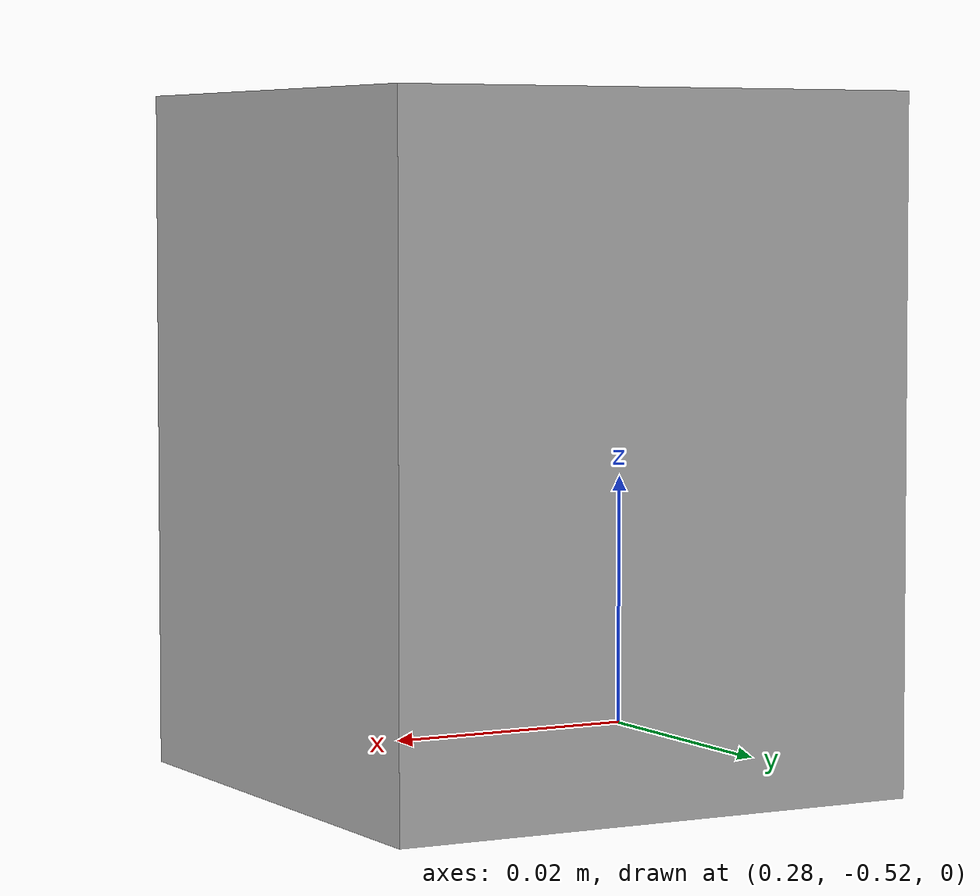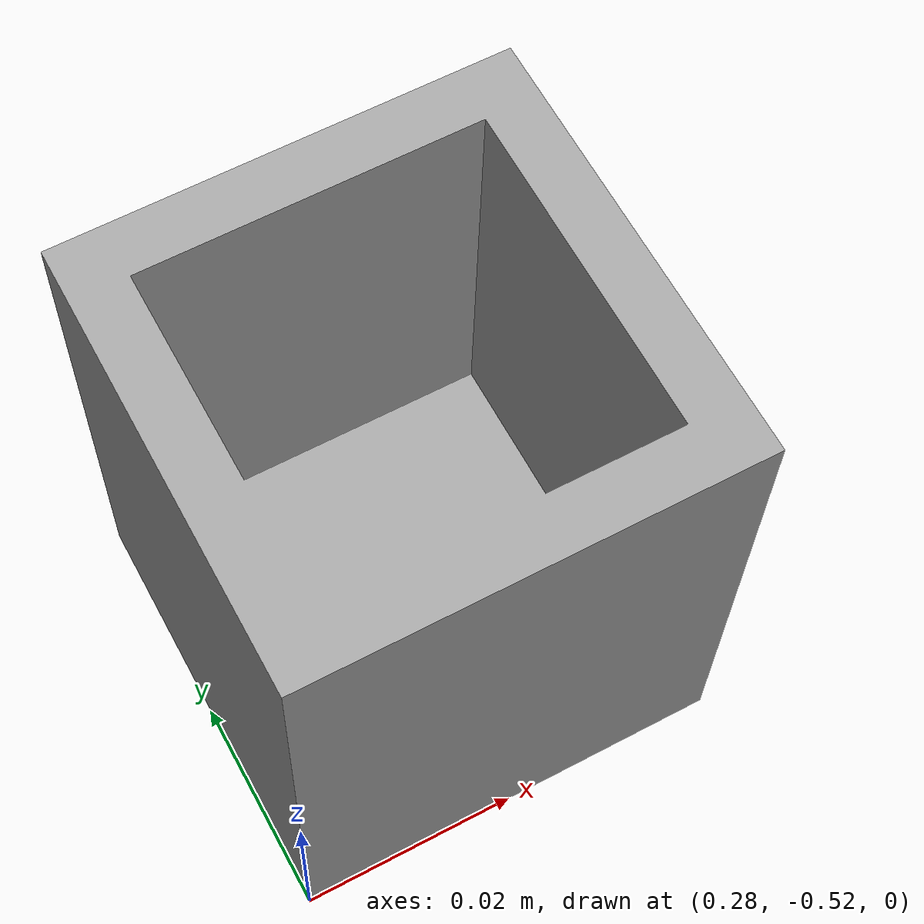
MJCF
<mujoco model="empty_box">
  <default>
    <default class="visual2">
      <geom group="2" type="mesh" contype="0" conaffinity="0"/>
    </default>
    <default class="collision2">
      <geom group="3" type="mesh"/>
    </default>
  </default>
  <asset>
    <material name="Steel_-_Satin2" specular="0.5" rgba="0.627451 0.627451 0.627451 1.0"/>
    <mesh file="/home/seongjin/Downloads/test/empty_box/empty_box.obj" scale="0.001 0.001 0.001"/>
    <mesh file="/home/seongjin/Downloads/test/empty_box/empty_box_collision_1.obj" scale="0.001 0.001 0.001"/>
    <mesh file="/home/seongjin/Downloads/test/empty_box/empty_box_collision_0.obj" scale="0.001 0.001 0.001"/>
    <mesh file="/home/seongjin/Downloads/test/empty_box/empty_box_collision_2.obj" scale="0.001 0.001 0.001"/>
    <mesh file="/home/seongjin/Downloads/test/empty_box/empty_box_collision_3.obj" scale="0.001 0.001 0.001"/>
    <mesh file="/home/seongjin/Downloads/test/empty_box/empty_box_collision_4.obj" scale="0.001 0.001 0.001"/>
    <mesh file="/home/seongjin/Downloads/test/empty_box/empty_box_collision_5.obj" scale="0.001 0.001 0.001"/>
    <mesh file="/home/seongjin/Downloads/test/empty_box/empty_box_collision_6.obj" scale="0.001 0.001 0.001"/>
    <mesh file="/home/seongjin/Downloads/test/empty_box/empty_box_collision_7.obj" scale="0.001 0.001 0.001"/>
    <mesh file="/home/seongjin/Downloads/test/empty_box/empty_box_collision_8.obj" scale="0.001 0.001 0.001"/>
    <mesh file="/home/seongjin/Downloads/test/empty_box/empty_box_collision_9.obj" scale="0.001 0.001 0.001"/>
    <mesh file="/home/seongjin/Downloads/test/empty_box/empty_box_collision_10.obj" scale="0.001 0.001 0.001"/>
    <mesh file="/home/seongjin/Downloads/test/empty_box/empty_box_collision_11.obj" scale="0.001 0.001 0.001"/>
    <mesh file="/home/seongjin/Downloads/test/empty_box/empty_box_collision_12.obj" scale="0.001 0.001 0.001"/>
    <mesh file="/home/seongjin/Downloads/test/empty_box/empty_box_collision_13.obj" scale="0.001 0.001 0.001"/>
    <mesh file="/home/seongjin/Downloads/test/empty_box/empty_box_collision_14.obj" scale="0.001 0.001 0.001"/>
    <mesh file="/home/seongjin/Downloads/test/empty_box/empty_box_collision_15.obj" scale="0.001 0.001 0.001"/>
    <mesh file="/home/seongjin/Downloads/test/empty_box/empty_box_collision_16.obj" scale="0.001 0.001 0.001"/>
    <mesh file="/home/seongjin/Downloads/test/empty_box/empty_box_collision_17.obj" scale="0.001 0.001 0.001"/>
    <mesh file="/home/seongjin/Downloads/test/empty_box/empty_box_collision_18.obj" scale="0.001 0.001 0.001"/>
    <mesh file="/home/seongjin/Downloads/test/empty_box/empty_box_collision_19.obj" scale="0.001 0.001 0.001"/>
    <mesh file="/home/seongjin/Downloads/test/empty_box/empty_box_collision_20.obj" scale="0.001 0.001 0.001"/>
    <mesh file="/home/seongjin/Downloads/test/empty_box/empty_box_collision_21.obj" scale="0.001 0.001 0.001"/>
    <mesh file="/home/seongjin/Downloads/test/empty_box/empty_box_collision_22.obj" scale="0.001 0.001 0.001"/>
  </asset>
  <worldbody>
    <body name="empty_box" pos="0.3 -0.5 0">
      <joint type="free"/>
      <geom material="Steel_-_Satin2" mesh="empty_box" class="visual2"/>
      <geom mesh="empty_box_collision_0" friction="0.7 0.7 0.7" condim="6"  solimp="0.95 0.99 0.001" solref="0.004 1" rgba="0.16548280273097937 0.6115624036152839 0.22257894084434393 1" class="collision2"/>
      <geom mesh="empty_box_collision_1" friction="0.7 0.7 0.7" condim="6"  solimp="0.95 0.99 0.001" solref="0.004 1" rgba="0.6217827467924142 0.9808848631185778 0.3591586552933258 1" class="collision2"/>
      <geom mesh="empty_box_collision_2" friction="0.7 0.7 0.7" condim="6"  solimp="0.95 0.99 0.001" solref="0.004 1" rgba="0.4448626151752604 0.5687181782635936 0.9490032907642686 1" class="collision2"/>
      <geom mesh="empty_box_collision_3" friction="0.7 0.7 0.7" condim="6"  solimp="0.95 0.99 0.001" solref="0.004 1" rgba="0.29730406725968817 0.9019272510736704 0.8656097693020329 1" class="collision2"/>
      <geom mesh="empty_box_collision_4" friction="0.7 0.7 0.7" condim="6"  solimp="0.95 0.99 0.001" solref="0.004 1" rgba="0.10539589470673782 0.06534923750454746 0.9070553062356406 1" class="collision2"/>
      <geom mesh="empty_box_collision_5" friction="0.7 0.7 0.7" condim="6"  solimp="0.95 0.99 0.001" solref="0.004 1" rgba="0.9662833075534359 0.8993090144336255 0.4391182592716395 1" class="collision2"/>
      <geom mesh="empty_box_collision_6" friction="0.7 0.7 0.7" condim="6"  solimp="0.95 0.99 0.001" solref="0.004 1" rgba="0.8733633750153083 0.7266112320961049 0.9168383478120005 1" class="collision2"/>
      <geom mesh="empty_box_collision_7" friction="0.7 0.7 0.7" condim="6"  solimp="0.95 0.99 0.001" solref="0.004 1" rgba="0.4559584669494523 0.8774912614386928 0.0061204158089090965 1" class="collision2"/>
      <geom mesh="empty_box_collision_8" friction="0.7 0.7 0.7" condim="6"  solimp="0.95 0.99 0.001" solref="0.004 1" rgba="0.2802566305263626 0.3031708466049323 0.7951078339934398 1" class="collision2"/>
      <geom mesh="empty_box_collision_9" friction="0.7 0.7 0.7" condim="6"  solimp="0.95 0.99 0.001" solref="0.004 1" rgba="0.19522734748584403 0.4947082195541552 0.7644004184958425 1" class="collision2"/>
      <geom mesh="empty_box_collision_10" friction="0.7 0.7 0.7" condim="6"  solimp="0.95 0.99 0.001" solref="0.004 1" rgba="0.6535899943022443 0.13790481997271553 0.4267139394654752 1" class="collision2"/>
      <geom mesh="empty_box_collision_11" friction="0.7 0.7 0.7" condim="6"  solimp="0.95 0.99 0.001" solref="0.004 1" rgba="0.6306866425889781 0.2369788459276071 0.545071819588209 1" class="collision2"/>
      <geom mesh="empty_box_collision_12" friction="0.7 0.7 0.7" condim="6"  solimp="0.95 0.99 0.001" solref="0.004 1" rgba="0.35816794575481736 0.13753278846352845 0.9303596142483612 1" class="collision2"/>
      <geom mesh="empty_box_collision_13" friction="0.7 0.7 0.7" condim="6"  solimp="0.95 0.99 0.001" solref="0.004 1" rgba="0.34168352438453253 0.3047627942836444 0.32009161222852955 1" class="collision2"/>
      <geom mesh="empty_box_collision_14" friction="0.7 0.7 0.7" condim="6"  solimp="0.95 0.99 0.001" solref="0.004 1" rgba="0.5256673981543794 0.6922602444637128 0.07100376487467297 1" class="collision2"/>
      <geom mesh="empty_box_collision_15" friction="0.7 0.7 0.7" condim="6"  solimp="0.95 0.99 0.001" solref="0.004 1" rgba="0.587238425767195 0.21664760745952616 0.011958713639552698 1" class="collision2"/>
      <geom mesh="empty_box_collision_16" friction="0.7 0.7 0.7" condim="6"  solimp="0.95 0.99 0.001" solref="0.004 1" rgba="0.14578563960938573 0.7557257162214773 0.4740228165449889 1" class="collision2"/>
      <geom mesh="empty_box_collision_17" friction="0.7 0.7 0.7" condim="6"  solimp="0.95 0.99 0.001" solref="0.004 1" rgba="0.40577251033693695 0.4538533604299414 0.44196582168984433 1" class="collision2"/>
      <geom mesh="empty_box_collision_18" friction="0.7 0.7 0.7" condim="6"  solimp="0.95 0.99 0.001" solref="0.004 1" rgba="0.7370424895272065 0.8170868695766178 0.27529228508281445 1" class="collision2"/>
      <geom mesh="empty_box_collision_19" friction="0.7 0.7 0.7" condim="6"  solimp="0.95 0.99 0.001" solref="0.004 1" rgba="0.9230813443241825 0.49142222447904527 0.5729377492076092 1" class="collision2"/>
      <geom mesh="empty_box_collision_20" friction="0.7 0.7 0.7" condim="6"  solimp="0.95 0.99 0.001" solref="0.004 1" rgba="0.9773243551740105 0.9253960610480145 0.820217366896148 1" class="collision2"/>
      <geom mesh="empty_box_collision_21" friction="0.7 0.7 0.7" condim="6"  solimp="0.95 0.99 0.001" solref="0.004 1" rgba="0.6211694487808986 0.25299690556721843 0.7159908251297742 1" class="collision2"/>
      <geom mesh="empty_box_collision_22" friction="0.7 0.7 0.7" condim="6"  solimp="0.95 0.99 0.001" solref="0.004 1" rgba="0.5378478206720504 0.48126809351745814 0.18654761344299642 1" class="collision2"/>
    </body>
  </worldbody>
</mujoco>
